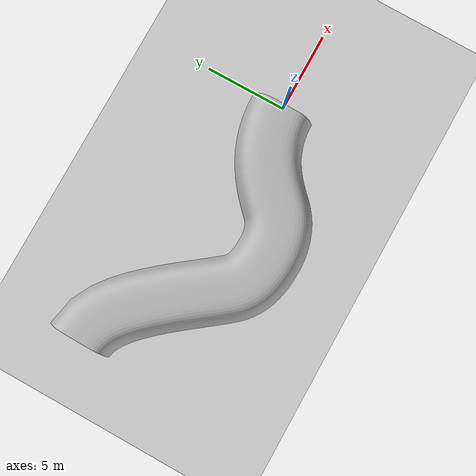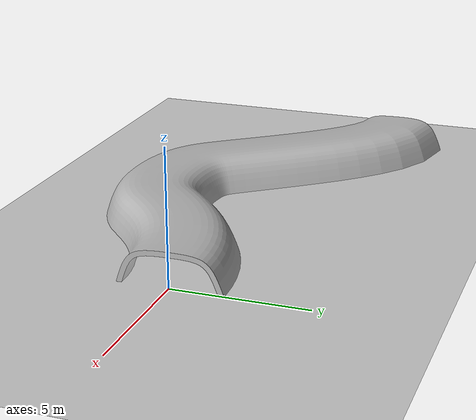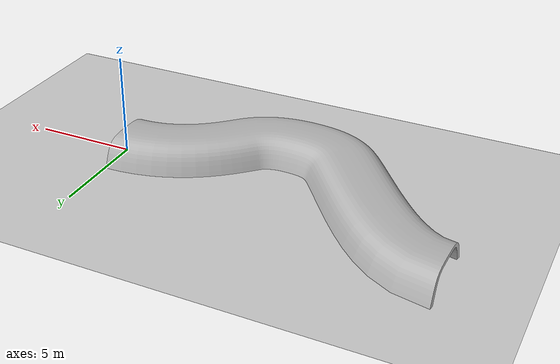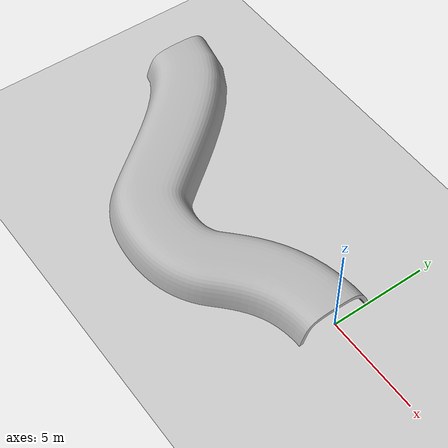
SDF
<sdf version='1.4'>
  <world name='default'>
    <!-- A global light source -->
    <include>
      <uri>model://sun</uri>
    </include>

    <!-- A ground plane -->
    <include>
      <uri>model://ground_plane</uri>
    </include>

    <physics type="ode">
      <real_time_update_rate>1000.0</real_time_update_rate>
      <max_step_size>0.001</max_step_size>
      <real_time_factor>1</real_time_factor>
      <ode>
        <solver>
          <type>quick</type>
          <iters>150</iters>
          <precon_iters>0</precon_iters>
          <sor>1.400000</sor>
          <use_dynamic_moi_rescaling>1</use_dynamic_moi_rescaling>
        </solver>
        <constraints>
          <cfm>0.00001</cfm>
          <erp>0.2</erp>
          <contact_max_correcting_vel>2000.000000</contact_max_correcting_vel>
          <contact_surface_layer>0.01000</contact_surface_layer>
        </constraints>
      </ode>
    </physics>

    <!-- Load world -->
    <include>
      <uri>model://turtlebot3_tunnel</uri>
    </include>

    <scene>
      <ambient>0.4 0.4 0.4 1</ambient>
      <background>0.7 0.7 0.7 1</background>
      <shadows>true</shadows>
    </scene>

    <gui fullscreen='0'>
      <camera name='user_camera'>
        <pose>0.8 0.0 12.0 0 1.5708 0</pose>
        <view_controller>orbit</view_controller>
      </camera>
    </gui>
  </world>
</sdf>

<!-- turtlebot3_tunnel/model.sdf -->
<sdf version="1.5">
  <model name="tunnel">
    <static>true</static>
    <link name="link">
    <collision name="collision">
        <pose>0 -2 0 0 -0 0</pose>
        <geometry>
            <mesh>
                <uri>model://tunnel/meshes/tunnel.dae</uri>
                <scale>2 2 2</scale>
            </mesh>
        </geometry>
    </collision>
    <visual name="visual">
        <pose>0 -2 0 0 -0 0</pose>
        <geometry>
            <mesh>
                <uri>model://tunnel/meshes/tunnel.dae</uri>
                <scale>2 2 2</scale>
            </mesh>
        </geometry>
    </visual>
    </link>
  </model>
</sdf>
